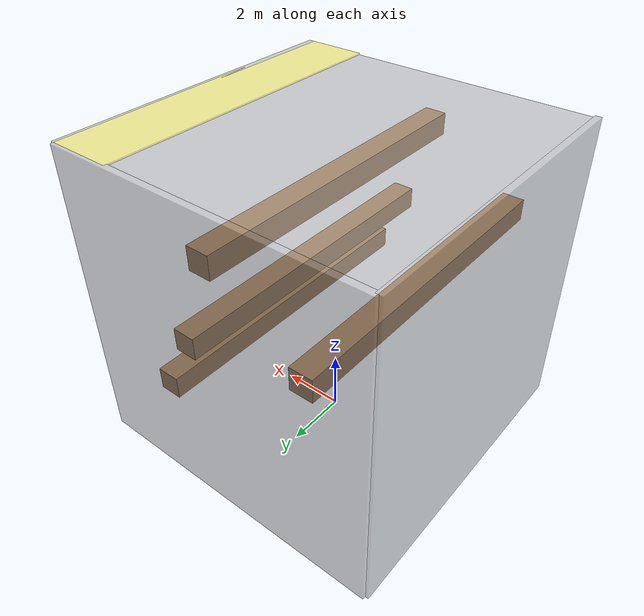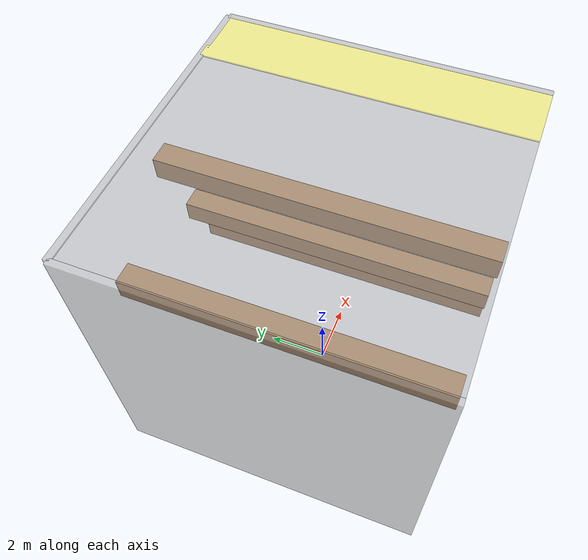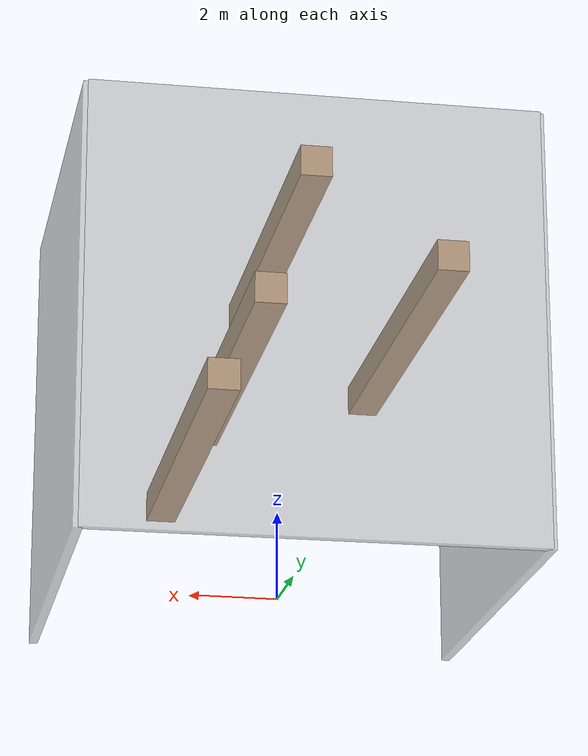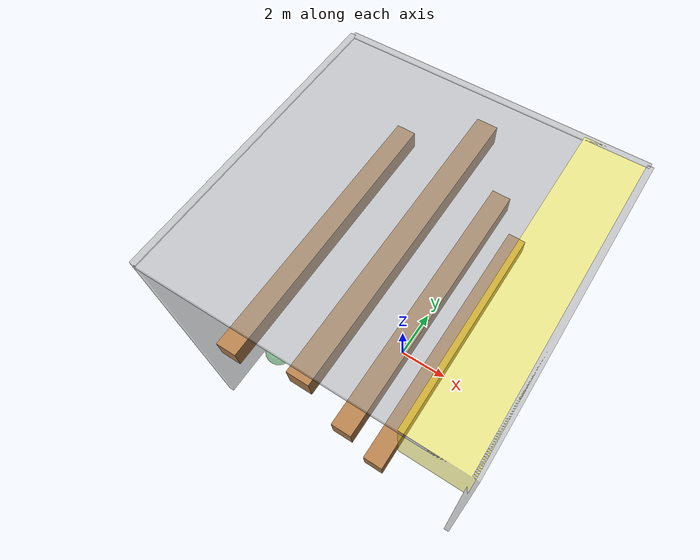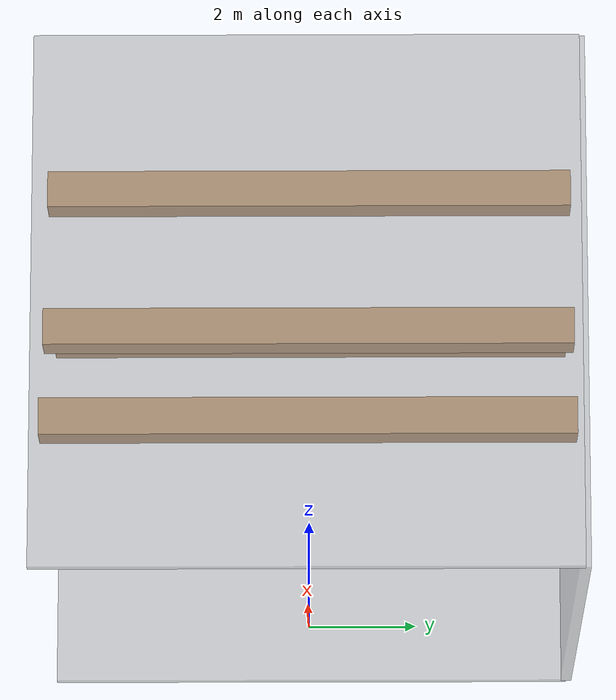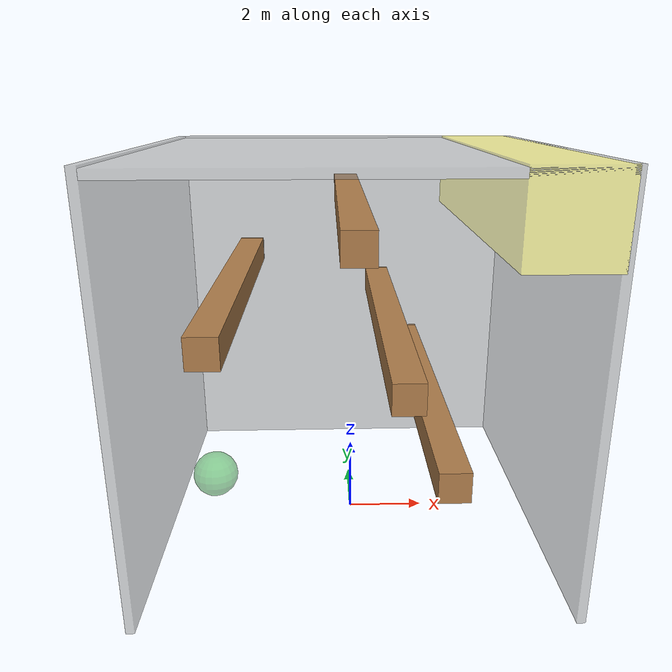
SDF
<?xml version='1.0'?>
<sdf version='1.5'>
  <model name='air_space'>
    <pose frame=''>0 0 0 0 -0 0</pose>

    <link name='wall_0'>
        <pose frame=''>-5.0 0.0 5.0 0 -0 1.570796</pose>
        <collision name='collision'>
          <geometry>
            <box>
              <size>10 0.2 10.0</size>
            </box>
          </geometry>
          <max_contacts>10</max_contacts>
          <surface>
            <contact>
              <ode/>
            </contact>
            <bounce/>
            <friction>
              <torsional>
                <ode/>
              </torsional>
              <ode/>
            </friction>
          </surface>
        </collision>
        <visual name='visual'>
          <cast_shadows>0</cast_shadows>
          <transparency>0.5</transparency>
          <geometry>
            <box>
              <size>10 0.2 10.0</size>
            </box>
          </geometry>
          <material>
            <script>
            <name>Gazebo/GreyTransparent</name>
            <uri>file://media/materials/scripts/gazebo.material</uri>
            </script>
            <ambient>1 1 1 1</ambient>
          </material>
        </visual>
        <self_collide>0</self_collide>
        <enable_wind>0</enable_wind>
        <kinematic>0</kinematic>
      </link>

      <link name='wall_1'>
        <pose frame=''>5.0 0.0 5.0 0 -0 -1.570796</pose>
        <collision name='collision'>
          <geometry>
            <box>
              <size>10 0.2 10.0</size>
            </box>
          </geometry>
          <max_contacts>10</max_contacts>
          <surface>
            <contact>
              <ode/>
            </contact>
            <bounce/>
            <friction>
              <torsional>
                <ode/>
              </torsional>
              <ode/>
            </friction>
          </surface>
        </collision>
        <visual name='visual'>
          <cast_shadows>0</cast_shadows>
          <transparency>0.5</transparency>
          <geometry>
            <box>
              <size>10 0.2 10.0</size>
            </box>
          </geometry>
          <material>
            <script>
            <name>Gazebo/GreyTransparent</name>
            <uri>file://media/materials/scripts/gazebo.material</uri>

            </script>
            <ambient>1 1 1 1</ambient>
          </material>
        </visual>
        <self_collide>0</self_collide>
        <enable_wind>0</enable_wind>
        <kinematic>0</kinematic>
      </link>

      <link name='wall_2'>
        <pose frame=''>0 0.0 9.85 1.570796 -0 -0</pose>
        <collision name='collision'>
          <geometry>
            <box>
              <size>10 0.2 10.0</size>
            </box>
          </geometry>
          <max_contacts>10</max_contacts>
          <surface>
            <contact>
              <ode/>
            </contact>
            <bounce/>
            <friction>
              <torsional>
                <ode/>
              </torsional>
              <ode/>
            </friction>
          </surface>
        </collision>
        <visual name='visual'>
          <cast_shadows>0</cast_shadows>
          <transparency>0.5</transparency>
          <geometry>
            <box>
              <size>10 0.2 10.0</size>
            </box>
          </geometry>
          <material>
            <script>
            <name>Gazebo/GreyTransparent</name>
            <uri>file://media/materials/scripts/gazebo.material</uri>

            </script>
            <ambient>1 1 1 1</ambient>
          </material>
        </visual>
        <self_collide>0</self_collide>
        <enable_wind>0</enable_wind>
        <kinematic>0</kinematic>
      </link>

      <link name='wall_3'>
        <pose frame=''>-0 5.0 5.0 0 -0 0</pose>
        <collision name='collision'>
          <geometry>
            <box>
              <size>10 0.2 10.0</size>
            </box>
          </geometry>
          <max_contacts>10</max_contacts>
          <surface>
            <contact>
              <ode/>
            </contact>
            <bounce/>
            <friction>
              <torsional>
                <ode/>
              </torsional>
              <ode/>
            </friction>
          </surface>
        </collision>
        <visual name='visual'>
          <cast_shadows>0</cast_shadows>
          <transparency>0.5</transparency>
          <geometry>
            <box>
              <size>10 0.2 10.0</size>
            </box>
          </geometry>
          <material>
            <script>
            <uri>file://media/materials/scripts/gazebo.material</uri>
            <name>Gazebo/Grey</name>
            </script>
            <ambient>1 1 1 1</ambient>
          </material>
        </visual>
        <self_collide>0</self_collide>
        <enable_wind>0</enable_wind>
        <kinematic>0</kinematic>
      </link>

    <link name='cube_1'>
        <pose frame=''>0 0 8.5 0 -0 0</pose>
        <collision name='collision'>
          <geometry>
            <box>
              <size>0.7 10 0.7</size>
            </box>
          </geometry>
          <max_contacts>10</max_contacts>
          <surface>
            <contact>
              <ode/>
            </contact>
            <bounce/>
            <friction>
              <torsional>
                <ode/>
              </torsional>
              <ode/>
            </friction>
          </surface>
        </collision>
        <visual name='visual'>
        <cast_shadows>0</cast_shadows>
          <geometry>
            <box>
              <size>0.7 10 0.7</size>
            </box>
          </geometry>
          <material>
            <script>
              <uri>file://media/materials/scripts/gazebo.material</uri>
              <name>Gazebo/Wood</name>
            </script>
          </material>
        </visual>
        <self_collide>0</self_collide>
        <enable_wind>0</enable_wind>
        <kinematic>0</kinematic>
     </link>

     <link name='cube_2'>
        <pose frame=''>-3 0 6.5 0 -0 0</pose>
        <collision name='collision'>
          <geometry>
            <box>
              <size>0.7 10 0.7</size>
            </box>
          </geometry>
          <max_contacts>10</max_contacts>
          <surface>
            <contact>
              <ode/>
            </contact>
            <bounce/>
            <friction>
              <torsional>
                <ode/>
              </torsional>
              <ode/>
            </friction>
          </surface>
        </collision>
        <visual name='visual'>
        <cast_shadows>0</cast_shadows>
          <geometry>
            <box>
              <size>0.7 10 0.7</size>
            </box>
          </geometry>
          <material>
            <script>
              <uri>file://media/materials/scripts/gazebo.material</uri>
              <name>Gazebo/Wood</name>
            </script>
          </material>
        </visual>
        <self_collide>0</self_collide>
        <enable_wind>0</enable_wind>
        <kinematic>0</kinematic>
     </link>

     <link name='cube_3'>
        <pose frame=''>1 0 5.5 0 -0 0</pose>
        <collision name='collision'>
          <geometry>
            <box>
              <size>0.7 10 0.7</size>
            </box>
          </geometry>
          <max_contacts>10</max_contacts>
          <surface>
            <contact>
              <ode/>
            </contact>
            <bounce/>
            <friction>
              <torsional>
                <ode/>
              </torsional>
              <ode/>
            </friction>
          </surface>
        </collision>
        <visual name='visual'>
        <cast_shadows>0</cast_shadows>
          <geometry>
            <box>
              <size>0.7 10 0.7</size>
            </box>
          </geometry>
          <material>
            <script>
              <uri>file://media/materials/scripts/gazebo.material</uri>
              <name>Gazebo/Wood</name>
            </script>
          </material>
        </visual>
        <self_collide>0</self_collide>
        <enable_wind>0</enable_wind>
        <kinematic>0</kinematic>
     </link>

     <link name='cube_4'>
        <pose frame=''>2 0 3.5 0 -0 0</pose>
        <collision name='collision'>
          <geometry>
            <box>
              <size>0.7 10 0.7</size>
            </box>
          </geometry>
          <max_contacts>10</max_contacts>
          <surface>
            <contact>
              <ode/>
            </contact>
            <bounce/>
            <friction>
              <torsional>
                <ode/>
              </torsional>
              <ode/>
            </friction>
          </surface>
        </collision>
        <visual name='visual'>
        <cast_shadows>0</cast_shadows>
          <geometry>
            <box>
              <size>0.7 10 0.7</size>
            </box>
          </geometry>
          <material>
            <script>
              <uri>file://media/materials/scripts/gazebo.material</uri>
              <name>Gazebo/Wood</name>
            </script>
          </material>
        </visual>
        <self_collide>0</self_collide>
        <enable_wind>0</enable_wind>
        <kinematic>0</kinematic>
     </link>

      <link name='target'>
        <pose frame=''>4. 0.0 9. 0 -0 0</pose>
        <visual name='visual'>
        <transparency>0.5</transparency>
          <geometry>
             <box>
              <size>2 10 2</size>
            </box>
          </geometry>
          <material>
            <script>
              <uri>file://media/materials/scripts/gazebo.material</uri>
              <name>Gazebo/YellowTransparent</name>
            </script>
            <ambient>1 1 1 1</ambient>
          </material>
          <cast_shadows>0</cast_shadows>
          <transparency>0</transparency>
        </visual>
        <self_collide>0</self_collide>
        <enable_wind>0</enable_wind>
        <kinematic>0</kinematic>
      </link>

      <link name='start'>
        <pose frame=''>-3.182320 -3.339730 3. 0 -0 0</pose>
        <visual name='visual'>
        <transparency>0.5</transparency>
          <geometry>
            <sphere>
             <radius>.5</radius>
             </sphere>
          </geometry>
          <material>
            <script>
              <uri>file://media/materials/scripts/gazebo.material</uri>
              <name>Gazebo/GreenTransparent</name>
            </script>
            <ambient>1 1 1 1</ambient>
          </material>
          <cast_shadows>0</cast_shadows>
          <transparency>0</transparency>
        </visual>
        <self_collide>0</self_collide>
        <enable_wind>0</enable_wind>
        <kinematic>0</kinematic>
      </link>

    <static>1</static>
  </model>
</sdf>
